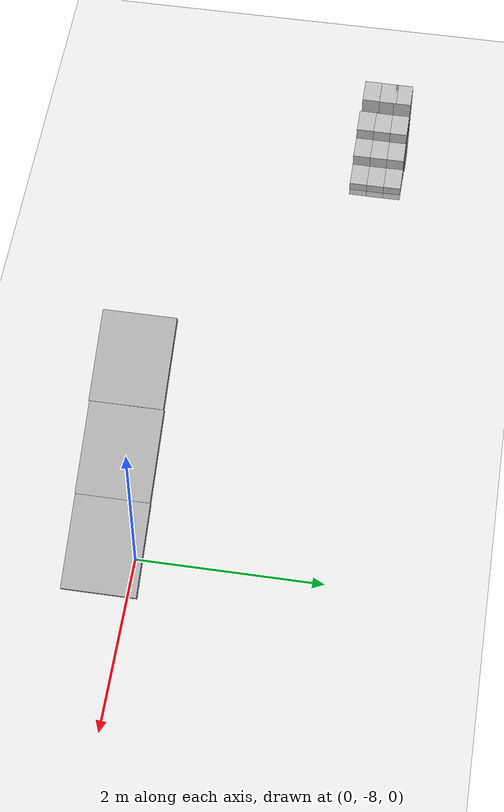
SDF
<?xml version="1.0" ?>
<sdf version="1.4">
  <world name="default">
    <include>
      <uri>model://ground_plane</uri>
    </include>
    <include>
      <uri>model://sun</uri>
    </include>
    <model name="box">
      <static>true</static>

      <pose>0.0 -8.3 0.2 0 0.4 0</pose>
      <link name="link">
        <collision name="collision">
          <geometry>
            <box>
              <size>1 0.8 .1</size>
            </box>
          </geometry>
        </collision>
        <visual name="visual">
          <geometry>
            <box>
              <size>1 0.8 .1</size>
            </box>
          </geometry>
        </visual>
      </link>
    </model>
    <model name="box2">
      <static>true</static>

      <pose>-0.920680 -8.303704 0.590382 0 0.399999 0</pose>
      <link name="link">
        <collision name="collision">
          <geometry>
            <box>
              <size>1 0.8 .1</size>
            </box>
          </geometry>
        </collision>
        <visual name="visual">
          <geometry>
            <box>
              <size>1 0.8 .1</size>
            </box>
          </geometry>
        </visual>
      </link>
    </model>
    <model name="box3">
      <static>true</static>

      <pose>-1.838143 -8.311040 0.982946 0 0.399999 0</pose>
      <link name="link">
        <collision name="collision">
          <geometry>
            <box>
              <size>1 0.8 .1</size>
            </box>
          </geometry>
        </collision>
        <visual name="visual">
          <geometry>
            <box>
              <size>1 0.8 .1</size>
            </box>
          </geometry>
        </visual>
      </link>
    </model>
    <model name="box4">
      <static>true</static>

      <pose>-5.505422 -6.099877 0  0 0 0</pose>
      <link name="link">
        <collision name="collision">
          <geometry>
            <box>
              <size>0.3 0.2 .2</size>
            </box>
          </geometry>
        </collision>
        <visual name="visual">
          <geometry>
            <box>
              <size>0.3 0.2 .2</size>
            </box>
          </geometry>
        </visual>
      </link>
    </model>

    <model name="box5">
      <static>true</static>

      <pose>-5.507440 -6.299760 0  0 0 0</pose>
      <link name="link">
        <collision name="collision">
          <geometry>
            <box>
              <size>0.3 0.2 .2</size>
            </box>
          </geometry>
        </collision>
        <visual name="visual">
          <geometry>
            <box>
              <size>0.3 0.2 .2</size>
            </box>
          </geometry>
        </visual>
      </link>
    </model>
    <model name="box6">
      <static>true</static>

      <pose>-5.506690 -5.899680 0  0 0 0</pose>
      <link name="link">
        <collision name="collision">
          <geometry>
            <box>
              <size>0.3 0.2 .2</size>
            </box>
          </geometry>
        </collision>
        <visual name="visual">
          <geometry>
            <box>
              <size>0.3 0.2 .2</size>
            </box>
          </geometry>
        </visual>
      </link>
    </model>
    <model name="box7">
      <static>true</static>

      <pose>-5.807055 -6.299887 0  0 0 0</pose>
      <link name="link">
        <collision name="collision">
          <geometry>
            <box>
              <size>0.3 0.2 .5</size>
            </box>
          </geometry>
        </collision>
        <visual name="visual">
          <geometry>
            <box>
              <size>0.3 0.2 .5</size>
            </box>
          </geometry>
        </visual>
      </link>
    </model>
    <model name="box8">
      <static>true</static>

      <pose>-5.807076 -6.100991 0  0 0 0</pose>
      <link name="link">
        <collision name="collision">
          <geometry>
            <box>
              <size>0.3 0.2 .5</size>
            </box>
          </geometry>
        </collision>
        <visual name="visual">
          <geometry>
            <box>
              <size>0.3 0.2 .5</size>
            </box>
          </geometry>
        </visual>
      </link>
    </model>
    <model name="box9">
      <static>true</static>

      <pose>-5.807330 -5.903050 0  0 0 0</pose>
      <link name="link">
        <collision name="collision">
          <geometry>
            <box>
              <size>0.3 0.2 .5</size>
            </box>
          </geometry>
        </collision>
        <visual name="visual">
          <geometry>
            <box>
              <size>0.3 0.2 .5</size>
            </box>
          </geometry>
        </visual>
      </link>
    </model>
    <model name="box10">
      <static>true</static>

      <pose>-6.092310 -6.298172 0  0 0 0</pose>
      <link name="link">
        <collision name="collision">
          <geometry>
            <box>
              <size>0.3 0.2 .8</size>
            </box>
          </geometry>
        </collision>
        <visual name="visual">
          <geometry>
            <box>
              <size>0.3 0.2 .8</size>
            </box>
          </geometry>
        </visual>
      </link>
    </model>
    <model name="box11">
      <static>true</static>

      <pose>-6.090220 -6.100670 0  0 0 0</pose>
      <link name="link">
        <collision name="collision">
          <geometry>
            <box>
              <size>0.3 0.2 .8</size>
            </box>
          </geometry>
        </collision>
        <visual name="visual">
          <geometry>
            <box>
              <size>0.3 0.2 .8</size>
            </box>
          </geometry>
        </visual>
      </link>
    </model>
    <model name="box12">
      <static>true</static>

      <pose>-6.087470 -5.904330 0  0 0 0</pose>
      <link name="link">
        <collision name="collision">
          <geometry>
            <box>
              <size>0.3 0.2 .8</size>
            </box>
          </geometry>
        </collision>
        <visual name="visual">
          <geometry>
            <box>
              <size>0.3 0.2 .8</size>
            </box>
          </geometry>
        </visual>
      </link>
    </model>
    <model name="box13">
      <static>true</static>

      <pose>-6.390028 -6.275608 0  0 0 0</pose>
      <link name="link">
        <collision name="collision">
          <geometry>
            <box>
              <size>0.3 0.2 1.2</size>
            </box>
          </geometry>
        </collision>
        <visual name="visual">
          <geometry>
            <box>
              <size>0.3 0.2 1.2</size>
            </box>
          </geometry>
        </visual>
      </link>
    </model>
    <model name="box14">
      <static>true</static>

      <pose>-6.386681 -6.075110 0  0 0 0</pose>
      <link name="link">
        <collision name="collision">
          <geometry>
            <box>
              <size>0.3 0.2 1.2</size>
            </box>
          </geometry>
        </collision>
        <visual name="visual">
          <geometry>
            <box>
              <size>0.3 0.2 1.2</size>
            </box>
          </geometry>
        </visual>
      </link>
    </model>
    <model name="box15">
      <static>true</static>

      <pose>-6.386343 -5.903740 0  0 0 0</pose>
      <link name="link">
        <collision name="collision">
          <geometry>
            <box>
              <size>0.3 0.2 1.2</size>
            </box>
          </geometry>
        </collision>
        <visual name="visual">
          <geometry>
            <box>
              <size>0.3 0.2 1.2</size>
            </box>
          </geometry>
        </visual>
      </link>
    </model>
  </world>
</sdf>
